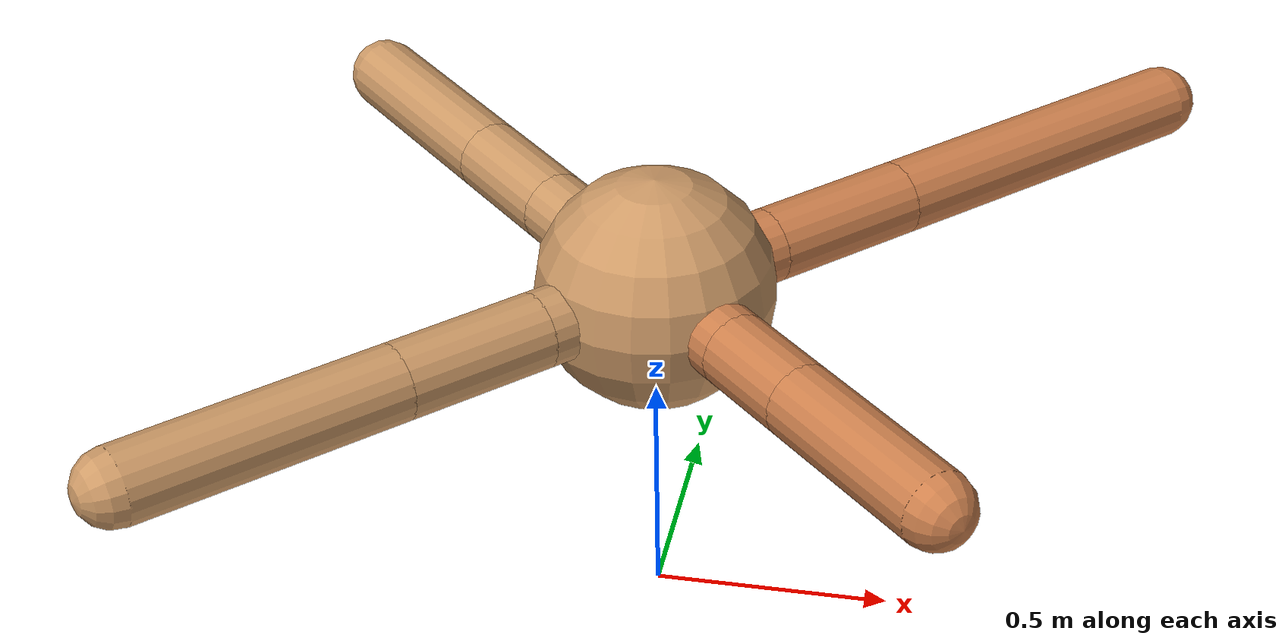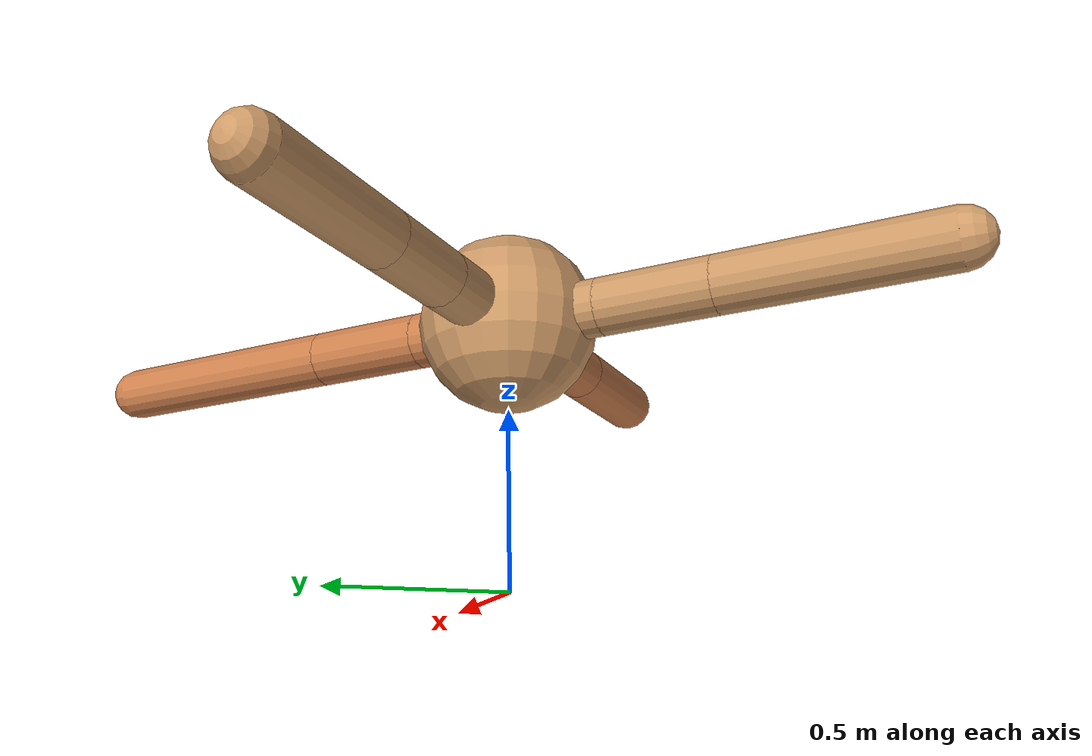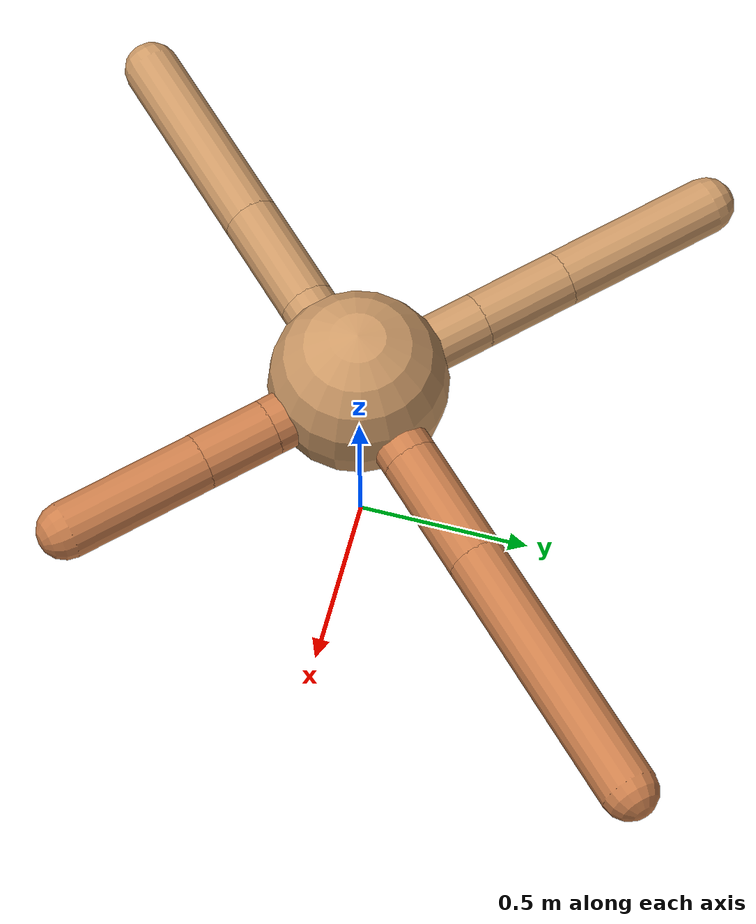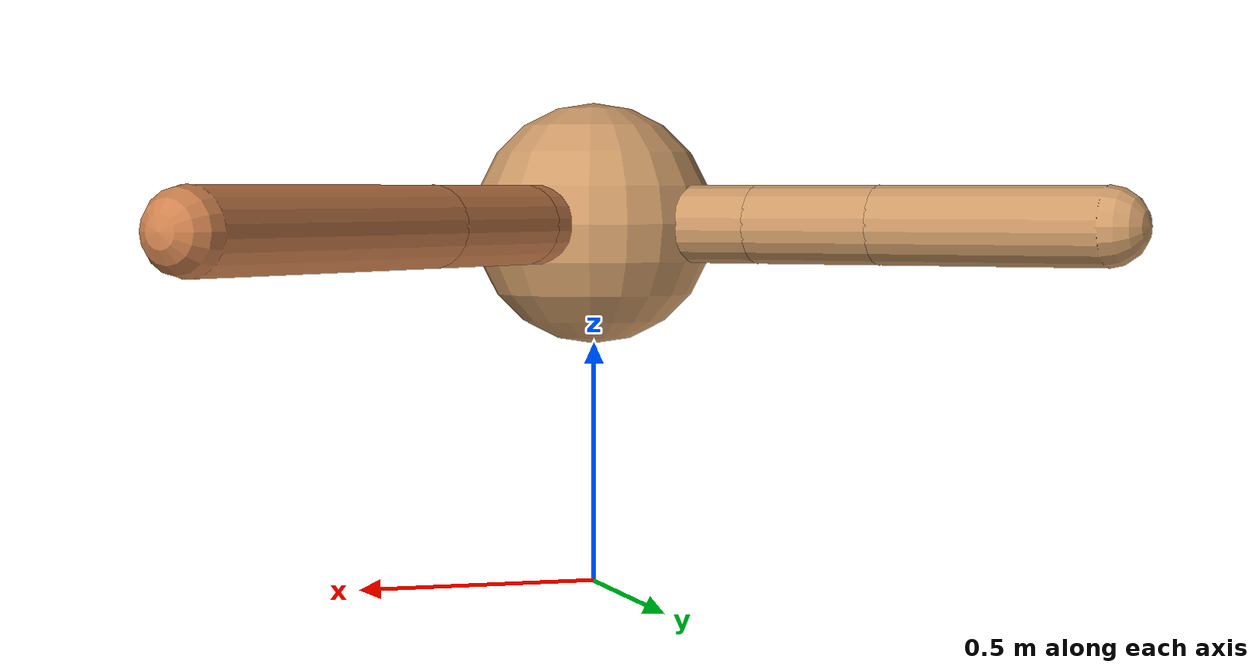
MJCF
<mujoco model="ant">
  <compiler angle="degree" coordinate="local" inertiafromgeom="true" />
  <option integrator="RK4" timestep="0.01" />
  <custom>
    <numeric data="0.0 0.0 0.55 1.0 0.0 0.0 0.0 0.0 1.0 0.0 -1.0 0.0 -1.0 0.0 1.0" name="init_qpos" />
  </custom>
  <default>
    <joint armature="1" damping="1" limited="true" />
    <geom conaffinity="0" condim="3" density="5.0" friction="1.5 0.1 0.1" margin="0.01" rgba="0.8 0.6 0.4 1" />
  </default>
  <worldbody>
    <body name="torso" pos="0 0 0.75">
      <geom name="torso_geom" pos="0 0 0" size="0.25" type="sphere" />

      <body name="front_left_leg" pos="0 0 0">
        <geom fromto="0.0 0.0 0.0 0.2 0.2 0.0" name="aux_1_geom" size="0.08" type="capsule" rgba=".8 .5 .3 1" />
        <body name="aux_1" pos="0.2 0.2 0.0">
          <joint axis="0 0 1" name="hip_1" pos="0.0 0.0 0.0" range="-40 40" type="hinge" />
          <geom fromto="0.0 0.0 0.0 0.2411448807895515 0.2411448807895515 0.0" name="left_leg_geom" size="0.08" type="capsule" rgba=".8 .5 .3 1" />
          <body pos="0.2411448807895515 0.2411448807895515 0.0" name="front_left_foot">
            <joint axis="-1 1 0" name="ankle_1" pos="0.0 0.0 0.0" range="30 100" type="hinge" />
            <geom fromto="0.0 0.0 0.0 0.5391836312537743 0.5391836312537743 0.0" name="left_ankle_geom" size="0.08" type="capsule" rgba=".8 .5 .3 1" />
          </body>
        </body>
      </body>
      <body name="front_right_leg" pos="0 0 0">
        <geom fromto="0.0 0.0 0.0 -0.26855912719747915 0.26855912719747915 0.0" name="aux_2_geom" size="0.08" type="capsule" />
        <body name="aux_2" pos="-0.26855912719747915 0.26855912719747915 0.0">
          <joint axis="0 0 1" name="hip_2" pos="0.0 0.0 0.0" range="-40 40" type="hinge" />
          <geom fromto="0.0 0.0 0.0 -0.1891484557005075 0.1891484557005075 0.0" name="right_leg_geom" size="0.08" type="capsule" />
          <body pos="-0.1891484557005075 0.1891484557005075 0.0" name="front_right_foot">
            <joint axis="1 1 0" name="ankle_2" pos="0.0 0.0 0.0" range="-100 -30" type="hinge" />
            <geom fromto="0.0 0.0 0.0 -0.3369674745600327 0.3369674745600327 0.0" name="right_ankle_geom" size="0.08" type="capsule" />
          </body>
        </body>
      </body>
      <body name="left_back_leg" pos="0 0 0">
        <geom fromto="0.0 0.0 0.0 -0.2 -0.2 0.0" name="aux_3_geom" size="0.08" type="capsule" />
        <body name="aux_3" pos="-0.2 -0.2 0.0">
          <joint axis="0 0 1" name="hip_3" pos="0.0 0.0 0.0" range="-40 40" type="hinge" />
          <geom fromto="0.0 0.0 0.0 -0.22412362662734955 -0.22412362662734955 0.0" name="back_leg_geom" size="0.08" type="capsule" />
          <body pos="-0.22412362662734955 -0.22412362662734955 0.0" name="left_back_foot">
            <joint axis="-1 1 0" name="ankle_3" pos="0.0 0.0 0.0" range="-100 -30" type="hinge" />
            <geom fromto="0.0 0.0 0.0 -0.41499804288931047 -0.41499804288931047 0.0" name="third_ankle_geom" size="0.08" type="capsule" />
          </body>
        </body>
      </body>
      <body name="right_back_leg" pos="0 0 0">
        <geom fromto="0.0 0.0 0.0 0.2 -0.2 0.0" name="aux_4_geom" size="0.08" type="capsule" rgba=".8 .5 .3 1" />
        <body name="aux_4" pos="0.2 -0.2 0.0">
          <joint axis="0 0 1" name="hip_4" pos="0.0 0.0 0.0" range="-40 40" type="hinge" />
          <geom fromto="0.0 0.0 0.0 0.14765550627467314 -0.14765550627467314 0.0" name="rightback_leg_geom" size="0.08" type="capsule" rgba=".8 .5 .3 1" />
          <body pos="0.14765550627467314 -0.14765550627467314 0.0" name="right_back_foot">
            <joint axis="1 1 0" name="ankle_4" pos="0.0 0.0 0.0" range="30 100" type="hinge" />
            <geom fromto="0.0 0.0 0.0 0.2897355262307501 -0.2897355262307501 0.0" name="fourth_ankle_geom" size="0.08" type="capsule" rgba=".8 .5 .3 1" />
          </body>
        </body>
      </body>
    </body>
  </worldbody>
  <actuator>
    <motor ctrllimited="true" ctrlrange="-1.0 1.0" joint="hip_4" gear="150" />
    <motor ctrllimited="true" ctrlrange="-1.0 1.0" joint="ankle_4" gear="150" />
    <motor ctrllimited="true" ctrlrange="-1.0 1.0" joint="hip_1" gear="150" />
    <motor ctrllimited="true" ctrlrange="-1.0 1.0" joint="ankle_1" gear="150" />
    <motor ctrllimited="true" ctrlrange="-1.0 1.0" joint="hip_2" gear="150" />
    <motor ctrllimited="true" ctrlrange="-1.0 1.0" joint="ankle_2" gear="150" />
    <motor ctrllimited="true" ctrlrange="-1.0 1.0" joint="hip_3" gear="150" />
    <motor ctrllimited="true" ctrlrange="-1.0 1.0" joint="ankle_3" gear="150" />
  </actuator>
</mujoco>
